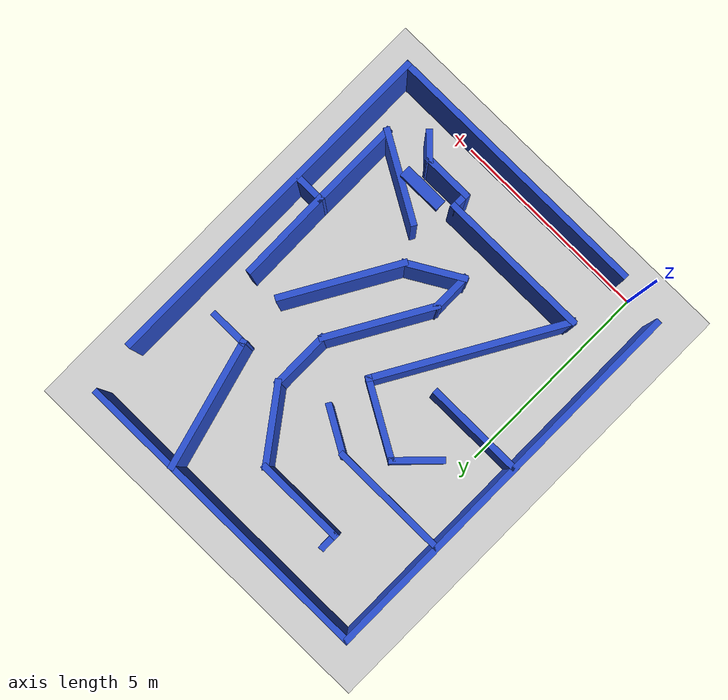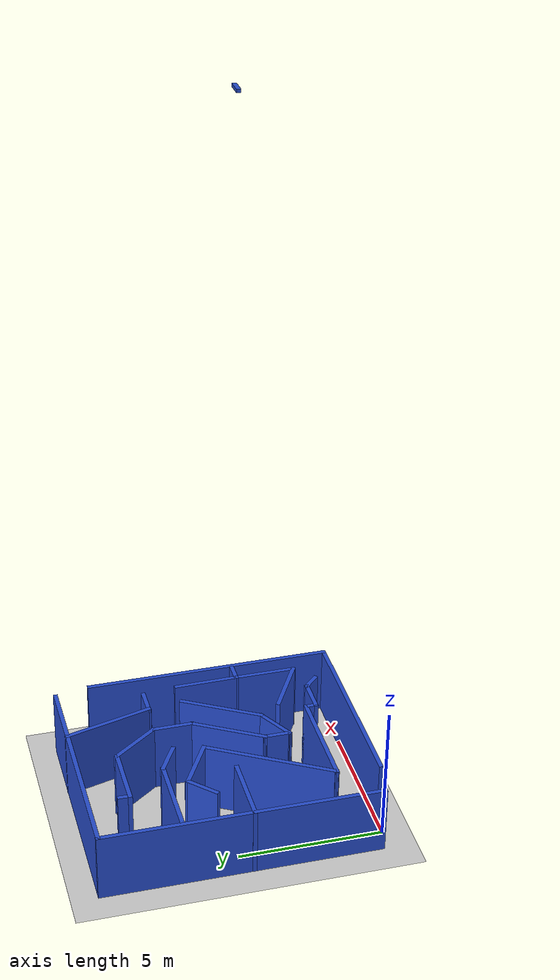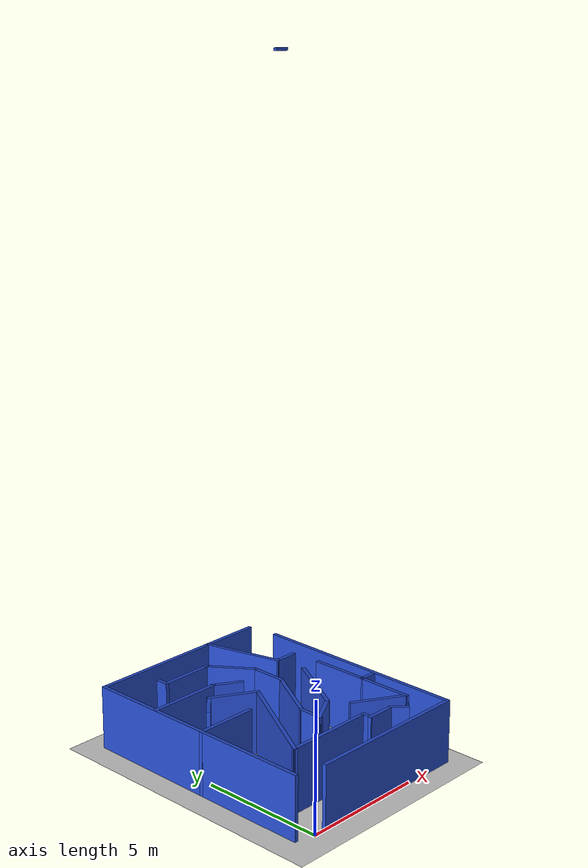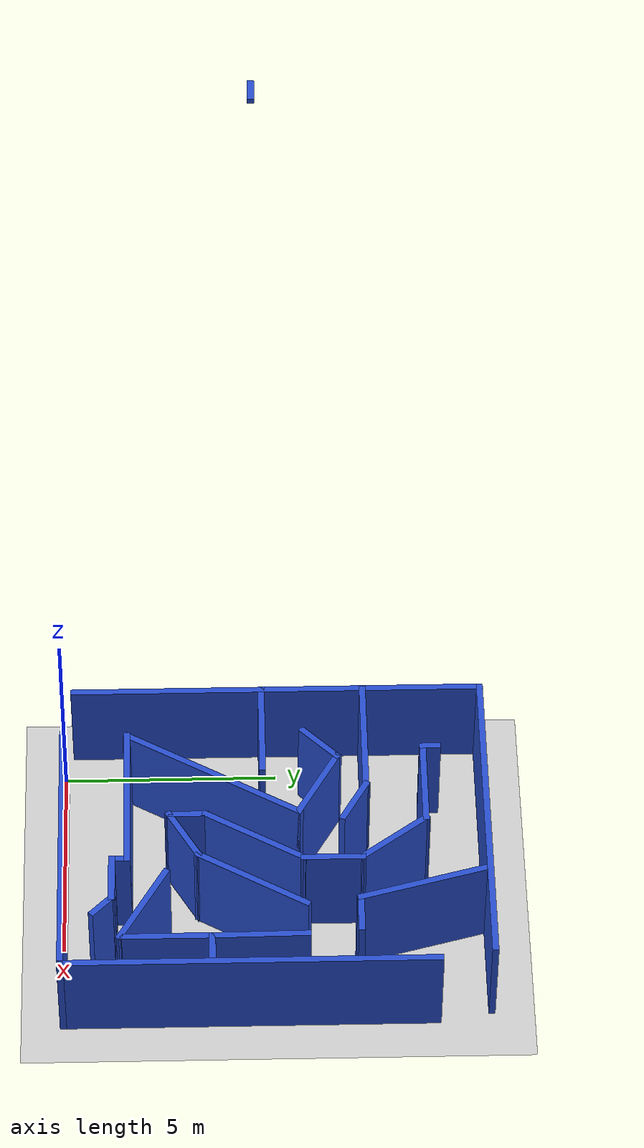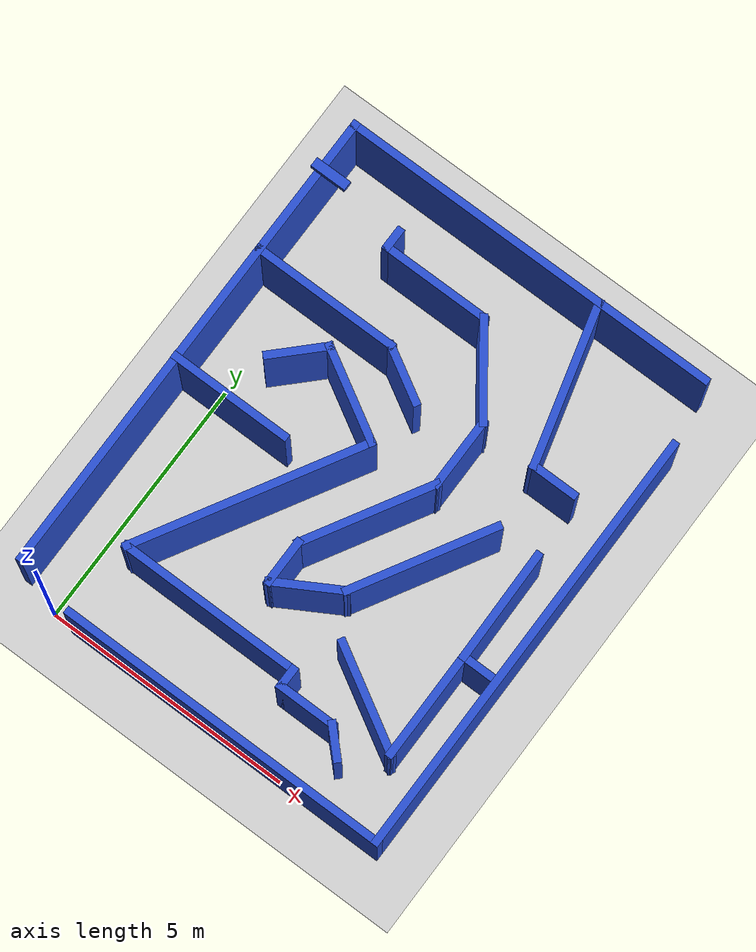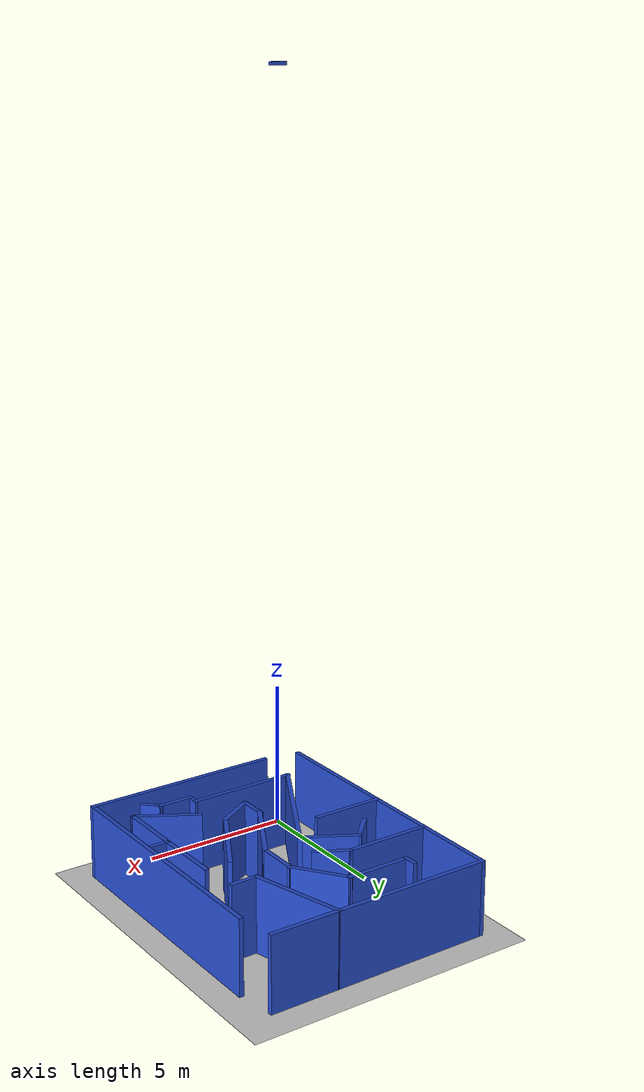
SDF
<sdf version="1.7">
 <world name="default">
  <light name="sun" type="directional">
   <pose>0 0 10 0 -0 0</pose>
   <diffuse>0.8 0.8 0.8 1</diffuse>
   <specular>0.2 0.2 0.2 1</specular>
   <attenuation>
    <range>1000</range>
    <constant>0.9</constant>
    <linear>0.01</linear>
    <quadratic>0.001</quadratic>
   </attenuation>
   <direction>-0.5 0.1 -0.9</direction>
   <spot><inner_angle>0</inner_angle><outer_angle>0</outer_angle><falloff>0</falloff></spot>
  </light>
  <model name="ground_plane">
   <static>1</static>
   <link name="link">
    <collision name="collision">
     <geometry><plane><normal>0 0 1</normal><size>100 100</size></plane></geometry>
     <surface><friction><ode><mu>100</mu><mu2>50</mu2></ode></friction></surface>
    </collision>
    <visual name="visual">
     <cast_shadows>0</cast_shadows>
     <geometry><plane><normal>0 0 1</normal><size>100 100</size></plane></geometry>
     <material>
      <script><uri>file://media/materials/scripts/gazebo.material</uri><name>Gazebo/Grey</name></script>
     </material>
    </visual>
   </link>
  </model>
  <gravity>0 0 -9.8</gravity>
  <magnetic_field>6e-06 2.3e-05 -4.2e-05</magnetic_field>
  <atmosphere type="adiabatic"/>
  <physics type="ode">
   <max_step_size>0.001</max_step_size>
   <real_time_factor>1</real_time_factor>
   <real_time_update_rate>1000</real_time_update_rate>
  </physics>
  <scene><ambient>0.4 0.4 0.4 1</ambient><background>0.7 0.7 0.7 1</background><shadows>0</shadows></scene>
  <spherical_coordinates>
   <surface_model>EARTH_WGS84</surface_model>
   <latitude_deg>0</latitude_deg>
   <longitude_deg>0</longitude_deg>
   <elevation>0</elevation>
   <heading_deg>0</heading_deg>
  </spherical_coordinates>
  <model name="camera">
   <link name="link_0">
    <inertial>
     <mass>0.00707571</mass>
     <inertia>
      <ixx>1.66494e-05</ixx>
      <ixy>0</ixy>
      <ixz>0</ixz>
      <iyy>0.000165453</iyy>
      <iyz>0</iyz>
      <izz>0.000169817</izz>
     </inertia>
    </inertial>
    <visual name="visual">
     <geometry><box><size>0.519789 0.133487 0.102067</size></box></geometry>
     <material>
      <lighting>1</lighting>
      <script><uri>file://media/materials/scripts/gazebo.material</uri><name>Gazebo/Blue</name></script>
      <shader type="pixel"/>
     </material>
     <cast_shadows>0</cast_shadows>
    </visual>
    <collision name="collision">
     <geometry><box><size>0.519789 0.133487 0.102067</size></box></geometry>
     <surface>
      <friction>
       <ode><mu>1</mu><mu2>1</mu2><fdir1>0 0 0</fdir1><slip1>0</slip1><slip2>0</slip2></ode>
       <torsional>
        <coefficient>1</coefficient>
        <patch_radius>0</patch_radius>
        <surface_radius>0</surface_radius>
        <use_patch_radius>1</use_patch_radius>
        <ode><slip>0</slip></ode>
       </torsional>
      </friction>
      <bounce><restitution_coefficient>0</restitution_coefficient><threshold>1e+06</threshold></bounce>
      <contact>
       <collide_without_contact>0</collide_without_contact>
       <collide_without_contact_bitmask>1</collide_without_contact_bitmask>
       <collide_bitmask>1</collide_bitmask>
       <ode>
        <soft_cfm>0</soft_cfm>
        <soft_erp>0.2</soft_erp>
        <kp>1e+13</kp>
        <kd>1</kd>
        <max_vel>0.01</max_vel>
        <min_depth>0</min_depth>
       </ode>
       <bullet>
        <split_impulse>1</split_impulse>
        <split_impulse_penetration_threshold>-0.01</split_impulse_penetration_threshold>
        <soft_cfm>0</soft_cfm>
        <soft_erp>0.2</soft_erp>
        <kp>1e+13</kp>
        <kd>1</kd>
       </bullet>
      </contact>
     </surface>
    </collision>
    <sensor name="upper_camera" type="camera">
     <pose>0 0 0 0 1.57 0</pose>
     <always_on>1</always_on>
     <visualize>1</visualize>
     <update_rate>30</update_rate>
     <camera name="Maze_Upper_Camera">
      <horizontal_fov>1.0856</horizontal_fov>
      <image><width>1280</width><height>720</height><format>R8G8B8</format></image>
      <clip><near>0.03</near><far>100</far></clip>
      <noise><type>gaussian</type><mean>0</mean><stddev>0.007</stddev></noise>
     </camera>
     <plugin name="camera_driver" filename="libgazebo_ros_camera.so"/>
    </sensor>
   </link>
   <static>1</static>
   <pose>2.99941 4.46162 25.4161 0 -0 0</pose>
  </model>
  <model name="maze_2">
   <link name="Wall_12">
    <pose>3.92259 -0.630829 0 0 0 -1.5708</pose>
    <inertial>
     <mass>1</mass>
     <inertia><ixx>1</ixx><ixy>0</ixy><ixz>0</ixz><iyy>1</iyy><iyz>0</iyz><izz>1</izz></inertia>
    </inertial>
    <visual name="Wall_12_Visual">
     <pose>0 0 1.25 0 -0 0</pose>
     <geometry><box><size>8.75 0.15 2.5</size></box></geometry>
     <material>
      <script><uri>file://media/materials/scripts/gazebo.material</uri><name>Gazebo/Blue</name></script>
      <ambient>0.643 0 0 1</ambient>
      <shader type="pixel"><normal_map>__default__</normal_map></shader>
      <diffuse>0 0 1 1</diffuse>
      <specular>0.1 0.1 0.1 1</specular>
      <emissive>0 0 0 1</emissive>
     </material>
     <meta><layer>0</layer></meta>
    </visual>
    <collision name="Wall_12_Collision">
     <pose>0 0 1.25 0 -0 0</pose>
     <geometry><box><size>8.75 0.15 2.5</size></box></geometry>
     <surface>
      <friction>
       <ode><mu>1</mu><mu2>1</mu2><fdir1>0 0 0</fdir1><slip1>0</slip1><slip2>0</slip2></ode>
       <torsional>
        <coefficient>1</coefficient>
        <patch_radius>0</patch_radius>
        <surface_radius>0</surface_radius>
        <use_patch_radius>1</use_patch_radius>
        <ode><slip>0</slip></ode>
       </torsional>
      </friction>
      <bounce><restitution_coefficient>0</restitution_coefficient><threshold>1e+06</threshold></bounce>
      <contact>
       <collide_without_contact>0</collide_without_contact>
       <collide_without_contact_bitmask>1</collide_without_contact_bitmask>
       <collide_bitmask>1</collide_bitmask>
       <ode>
        <soft_cfm>0</soft_cfm>
        <soft_erp>0.2</soft_erp>
        <kp>1e+13</kp>
        <kd>1</kd>
        <max_vel>0.01</max_vel>
        <min_depth>0</min_depth>
       </ode>
       <bullet>
        <split_impulse>1</split_impulse>
        <split_impulse_penetration_threshold>-0.01</split_impulse_penetration_threshold>
        <soft_cfm>0</soft_cfm>
        <soft_erp>0.2</soft_erp>
        <kp>1e+13</kp>
        <kd>1</kd>
       </bullet>
      </contact>
     </surface>
    </collision>
   </link>
   <link name="Wall_13">
    <pose>0.622594 -4.93083 0 0 -0 3.14159</pose>
    <inertial>
     <mass>1</mass>
     <inertia><ixx>1</ixx><ixy>0</ixy><ixz>0</ixz><iyy>1</iyy><iyz>0</iyz><izz>1</izz></inertia>
    </inertial>
    <visual name="Wall_13_Visual">
     <pose>0 0 1.25 0 -0 0</pose>
     <geometry><box><size>6.75 0.15 2.5</size></box></geometry>
     <material>
      <script><uri>file://media/materials/scripts/gazebo.material</uri><name>Gazebo/Blue</name></script>
      <ambient>0.643 0 0 1</ambient>
      <shader type="pixel"><normal_map>__default__</normal_map></shader>
      <diffuse>0 0 1 1</diffuse>
      <specular>0.1 0.1 0.1 1</specular>
      <emissive>0 0 0 1</emissive>
     </material>
     <meta><layer>0</layer></meta>
    </visual>
    <collision name="Wall_13_Collision">
     <pose>0 0 1.25 0 -0 0</pose>
     <geometry><box><size>6.75 0.15 2.5</size></box></geometry>
     <surface>
      <friction>
       <ode><mu>1</mu><mu2>1</mu2><fdir1>0 0 0</fdir1><slip1>0</slip1><slip2>0</slip2></ode>
       <torsional>
        <coefficient>1</coefficient>
        <patch_radius>0</patch_radius>
        <surface_radius>0</surface_radius>
        <use_patch_radius>1</use_patch_radius>
        <ode><slip>0</slip></ode>
       </torsional>
      </friction>
      <bounce><restitution_coefficient>0</restitution_coefficient><threshold>1e+06</threshold></bounce>
      <contact>
       <collide_without_contact>0</collide_without_contact>
       <collide_without_contact_bitmask>1</collide_without_contact_bitmask>
       <collide_bitmask>1</collide_bitmask>
       <ode>
        <soft_cfm>0</soft_cfm>
        <soft_erp>0.2</soft_erp>
        <kp>1e+13</kp>
        <kd>1</kd>
        <max_vel>0.01</max_vel>
        <min_depth>0</min_depth>
       </ode>
       <bullet>
        <split_impulse>1</split_impulse>
        <split_impulse_penetration_threshold>-0.01</split_impulse_penetration_threshold>
        <soft_cfm>0</soft_cfm>
        <soft_erp>0.2</soft_erp>
        <kp>1e+13</kp>
        <kd>1</kd>
       </bullet>
      </contact>
     </surface>
    </collision>
   </link>
   <link name="Wall_15">
    <pose>-1.44258 -1.42975 0 0 -0 1.0472</pose>
    <visual name="Wall_15_Visual">
     <pose>0 0 1.25 0 -0 0</pose>
     <geometry><box><size>4.75 0.15 2.5</size></box></geometry>
     <material>
      <script><uri>file://media/materials/scripts/gazebo.material</uri><name>Gazebo/Blue</name></script>
      <ambient>0 0 0 1</ambient>
      <shader type="pixel"/>
     </material>
     <meta><layer>0</layer></meta>
    </visual>
    <collision name="Wall_15_Collision">
     <pose>0 0 1.25 0 -0 0</pose>
     <geometry><box><size>4.75 0.15 2.5</size></box></geometry>
     <surface>
      <friction>
       <ode><mu>1</mu><mu2>1</mu2><fdir1>0 0 0</fdir1><slip1>0</slip1><slip2>0</slip2></ode>
       <torsional>
        <coefficient>1</coefficient>
        <patch_radius>0</patch_radius>
        <surface_radius>0</surface_radius>
        <use_patch_radius>1</use_patch_radius>
        <ode><slip>0</slip></ode>
       </torsional>
      </friction>
      <bounce><restitution_coefficient>0</restitution_coefficient><threshold>1e+06</threshold></bounce>
      <contact>
       <collide_without_contact>0</collide_without_contact>
       <collide_without_contact_bitmask>1</collide_without_contact_bitmask>
       <collide_bitmask>1</collide_bitmask>
       <ode>
        <soft_cfm>0</soft_cfm>
        <soft_erp>0.2</soft_erp>
        <kp>1e+13</kp>
        <kd>1</kd>
        <max_vel>0.01</max_vel>
        <min_depth>0</min_depth>
       </ode>
       <bullet>
        <split_impulse>1</split_impulse>
        <split_impulse_penetration_threshold>-0.01</split_impulse_penetration_threshold>
        <soft_cfm>0</soft_cfm>
        <soft_erp>0.2</soft_erp>
        <kp>1e+13</kp>
        <kd>1</kd>
       </bullet>
      </contact>
     </surface>
    </collision>
   </link>
   <link name="Wall_16">
    <pose>-1.09366 1.02461 0 0 -0 2.61799</pose>
    <visual name="Wall_16_Visual">
     <pose>0 0 1.25 0 -0 0</pose>
     <geometry><box><size>2 0.15 2.5</size></box></geometry>
     <material>
      <script><uri>file://media/materials/scripts/gazebo.material</uri><name>Gazebo/Blue</name></script>
      <ambient>0 0 0 1</ambient>
      <shader type="pixel"/>
     </material>
     <meta><layer>0</layer></meta>
    </visual>
    <collision name="Wall_16_Collision">
     <pose>0 0 1.25 0 -0 0</pose>
     <geometry><box><size>2 0.15 2.5</size></box></geometry>
     <surface>
      <friction>
       <ode><mu>1</mu><mu2>1</mu2><fdir1>0 0 0</fdir1><slip1>0</slip1><slip2>0</slip2></ode>
       <torsional>
        <coefficient>1</coefficient>
        <patch_radius>0</patch_radius>
        <surface_radius>0</surface_radius>
        <use_patch_radius>1</use_patch_radius>
        <ode><slip>0</slip></ode>
       </torsional>
      </friction>
      <bounce><restitution_coefficient>0</restitution_coefficient><threshold>1e+06</threshold></bounce>
      <contact>
       <collide_without_contact>0</collide_without_contact>
       <collide_without_contact_bitmask>1</collide_without_contact_bitmask>
       <collide_bitmask>1</collide_bitmask>
       <ode>
        <soft_cfm>0</soft_cfm>
        <soft_erp>0.2</soft_erp>
        <kp>1e+13</kp>
        <kd>1</kd>
        <max_vel>0.01</max_vel>
        <min_depth>0</min_depth>
       </ode>
       <bullet>
        <split_impulse>1</split_impulse>
        <split_impulse_penetration_threshold>-0.01</split_impulse_penetration_threshold>
        <soft_cfm>0</soft_cfm>
        <soft_erp>0.2</soft_erp>
        <kp>1e+13</kp>
        <kd>1</kd>
       </bullet>
      </contact>
     </surface>
    </collision>
   </link>
   <link name="Wall_20">
    <pose>-2.74759 -0.256182 0 0 -0 0</pose>
    <visual name="Wall_20_Visual">
     <pose>0 0 1.25 0 -0 0</pose>
     <geometry><box><size>2.5 0.15 2.5</size></box></geometry>
     <material>
      <script><uri>file://media/materials/scripts/gazebo.material</uri><name>Gazebo/Blue</name></script>
      <ambient>0 0 0 1</ambient>
      <shader type="pixel"/>
     </material>
     <meta><layer>0</layer></meta>
    </visual>
    <collision name="Wall_20_Collision">
     <pose>0 0 1.25 0 -0 0</pose>
     <geometry><box><size>2.5 0.15 2.5</size></box></geometry>
     <surface>
      <friction>
       <ode><mu>1</mu><mu2>1</mu2><fdir1>0 0 0</fdir1><slip1>0</slip1><slip2>0</slip2></ode>
       <torsional>
        <coefficient>1</coefficient>
        <patch_radius>0</patch_radius>
        <surface_radius>0</surface_radius>
        <use_patch_radius>1</use_patch_radius>
        <ode><slip>0</slip></ode>
       </torsional>
      </friction>
      <bounce><restitution_coefficient>0</restitution_coefficient><threshold>1e+06</threshold></bounce>
      <contact>
       <collide_without_contact>0</collide_without_contact>
       <collide_without_contact_bitmask>1</collide_without_contact_bitmask>
       <collide_bitmask>1</collide_bitmask>
       <ode>
        <soft_cfm>0</soft_cfm>
        <soft_erp>0.2</soft_erp>
        <kp>1e+13</kp>
        <kd>1</kd>
        <max_vel>0.01</max_vel>
        <min_depth>0</min_depth>
       </ode>
       <bullet>
        <split_impulse>1</split_impulse>
        <split_impulse_penetration_threshold>-0.01</split_impulse_penetration_threshold>
        <soft_cfm>0</soft_cfm>
        <soft_erp>0.2</soft_erp>
        <kp>1e+13</kp>
        <kd>1</kd>
       </bullet>
      </contact>
     </surface>
    </collision>
   </link>
   <link name="Wall_22">
    <pose>-2.28364 1.0982 0 0 0 -2.35619</pose>
    <visual name="Wall_22_Visual">
     <pose>0 0 1.25 0 -0 0</pose>
     <geometry><box><size>1.25 0.15 2.5</size></box></geometry>
     <material>
      <script><uri>file://media/materials/scripts/gazebo.material</uri><name>Gazebo/Blue</name></script>
      <ambient>0 0 0 1</ambient>
      <shader type="pixel"/>
     </material>
     <meta><layer>0</layer></meta>
    </visual>
    <collision name="Wall_22_Collision">
     <pose>0 0 1.25 0 -0 0</pose>
     <geometry><box><size>1.25 0.15 2.5</size></box></geometry>
     <surface>
      <friction>
       <ode><mu>1</mu><mu2>1</mu2><fdir1>0 0 0</fdir1><slip1>0</slip1><slip2>0</slip2></ode>
       <torsional>
        <coefficient>1</coefficient>
        <patch_radius>0</patch_radius>
        <surface_radius>0</surface_radius>
        <use_patch_radius>1</use_patch_radius>
        <ode><slip>0</slip></ode>
       </torsional>
      </friction>
      <bounce><restitution_coefficient>0</restitution_coefficient><threshold>1e+06</threshold></bounce>
      <contact>
       <collide_without_contact>0</collide_without_contact>
       <collide_without_contact_bitmask>1</collide_without_contact_bitmask>
       <collide_bitmask>1</collide_bitmask>
       <ode>
        <soft_cfm>0</soft_cfm>
        <soft_erp>0.2</soft_erp>
        <kp>1e+13</kp>
        <kd>1</kd>
        <max_vel>0.01</max_vel>
        <min_depth>0</min_depth>
       </ode>
       <bullet>
        <split_impulse>1</split_impulse>
        <split_impulse_penetration_threshold>-0.01</split_impulse_penetration_threshold>
        <soft_cfm>0</soft_cfm>
        <soft_erp>0.2</soft_erp>
        <kp>1e+13</kp>
        <kd>1</kd>
       </bullet>
      </contact>
     </surface>
    </collision>
   </link>
   <link name="Wall_24">
    <pose>-2.48295 2.1404 0 0 -0 0</pose>
    <visual name="Wall_24_Visual">
     <pose>0 0 1.25 0 -0 0</pose>
     <geometry><box><size>3 0.15 2.5</size></box></geometry>
     <material>
      <script><uri>file://media/materials/scripts/gazebo.material</uri><name>Gazebo/Blue</name></script>
      <ambient>0 0 0 1</ambient>
      <shader type="pixel"/>
     </material>
     <meta><layer>0</layer></meta>
    </visual>
    <collision name="Wall_24_Collision">
     <pose>0 0 1.25 0 -0 0</pose>
     <geometry><box><size>3 0.15 2.5</size></box></geometry>
     <surface>
      <friction>
       <ode><mu>1</mu><mu2>1</mu2><fdir1>0 0 0</fdir1><slip1>0</slip1><slip2>0</slip2></ode>
       <torsional>
        <coefficient>1</coefficient>
        <patch_radius>0</patch_radius>
        <surface_radius>0</surface_radius>
        <use_patch_radius>1</use_patch_radius>
        <ode><slip>0</slip></ode>
       </torsional>
      </friction>
      <bounce><restitution_coefficient>0</restitution_coefficient><threshold>1e+06</threshold></bounce>
      <contact>
       <collide_without_contact>0</collide_without_contact>
       <collide_without_contact_bitmask>1</collide_without_contact_bitmask>
       <collide_bitmask>1</collide_bitmask>
       <ode>
        <soft_cfm>0</soft_cfm>
        <soft_erp>0.2</soft_erp>
        <kp>1e+13</kp>
        <kd>1</kd>
        <max_vel>0.01</max_vel>
        <min_depth>0</min_depth>
       </ode>
       <bullet>
        <split_impulse>1</split_impulse>
        <split_impulse_penetration_threshold>-0.01</split_impulse_penetration_threshold>
        <soft_cfm>0</soft_cfm>
        <soft_erp>0.2</soft_erp>
        <kp>1e+13</kp>
        <kd>1</kd>
       </bullet>
      </contact>
     </surface>
    </collision>
   </link>
   <link name="Wall_25">
    <pose>-0.581633 1.8654 0 0 0 -0.523599</pose>
    <visual name="Wall_25_Visual">
     <pose>0 0 1.25 0 -0 0</pose>
     <geometry><box><size>1.25 0.15 2.5</size></box></geometry>
     <material>
      <script><uri>file://media/materials/scripts/gazebo.material</uri><name>Gazebo/Blue</name></script>
      <ambient>0 0 0 1</ambient>
      <shader type="pixel"/>
     </material>
     <meta><layer>0</layer></meta>
    </visual>
    <collision name="Wall_25_Collision">
     <pose>0 0 1.25 0 -0 0</pose>
     <geometry><box><size>1.25 0.15 2.5</size></box></geometry>
     <surface>
      <friction>
       <ode><mu>1</mu><mu2>1</mu2><fdir1>0 0 0</fdir1><slip1>0</slip1><slip2>0</slip2></ode>
       <torsional>
        <coefficient>1</coefficient>
        <patch_radius>0</patch_radius>
        <surface_radius>0</surface_radius>
        <use_patch_radius>1</use_patch_radius>
        <ode><slip>0</slip></ode>
       </torsional>
      </friction>
      <bounce><restitution_coefficient>0</restitution_coefficient><threshold>1e+06</threshold></bounce>
      <contact>
       <collide_without_contact>0</collide_without_contact>
       <collide_without_contact_bitmask>1</collide_without_contact_bitmask>
       <collide_bitmask>1</collide_bitmask>
       <ode>
        <soft_cfm>0</soft_cfm>
        <soft_erp>0.2</soft_erp>
        <kp>1e+13</kp>
        <kd>1</kd>
        <max_vel>0.01</max_vel>
        <min_depth>0</min_depth>
       </ode>
       <bullet>
        <split_impulse>1</split_impulse>
        <split_impulse_penetration_threshold>-0.01</split_impulse_penetration_threshold>
        <soft_cfm>0</soft_cfm>
        <soft_erp>0.2</soft_erp>
        <kp>1e+13</kp>
        <kd>1</kd>
       </bullet>
      </contact>
     </surface>
    </collision>
   </link>
   <link name="Wall_27">
    <pose>-0.792584 -3.42161 0 0 -0 0</pose>
    <visual name="Wall_27_Visual">
     <pose>0 0 1.25 0 -0 0</pose>
     <geometry><box><size>3.75 0.15 2.5</size></box></geometry>
     <material>
      <script><uri>file://media/materials/scripts/gazebo.material</uri><name>Gazebo/Blue</name></script>
      <ambient>0 0 0 1</ambient>
      <shader type="pixel"/>
     </material>
     <meta><layer>0</layer></meta>
    </visual>
    <collision name="Wall_27_Collision">
     <pose>0 0 1.25 0 -0 0</pose>
     <geometry><box><size>3.75 0.15 2.5</size></box></geometry>
     <surface>
      <friction>
       <ode><mu>1</mu><mu2>1</mu2><fdir1>0 0 0</fdir1><slip1>0</slip1><slip2>0</slip2></ode>
       <torsional>
        <coefficient>1</coefficient>
        <patch_radius>0</patch_radius>
        <surface_radius>0</surface_radius>
        <use_patch_radius>1</use_patch_radius>
        <ode><slip>0</slip></ode>
       </torsional>
      </friction>
      <bounce><restitution_coefficient>0</restitution_coefficient><threshold>1e+06</threshold></bounce>
      <contact>
       <collide_without_contact>0</collide_without_contact>
       <collide_without_contact_bitmask>1</collide_without_contact_bitmask>
       <collide_bitmask>1</collide_bitmask>
       <ode>
        <soft_cfm>0</soft_cfm>
        <soft_erp>0.2</soft_erp>
        <kp>1e+13</kp>
        <kd>1</kd>
        <max_vel>0.01</max_vel>
        <min_depth>0</min_depth>
       </ode>
       <bullet>
        <split_impulse>1</split_impulse>
        <split_impulse_penetration_threshold>-0.01</split_impulse_penetration_threshold>
        <soft_cfm>0</soft_cfm>
        <soft_erp>0.2</soft_erp>
        <kp>1e+13</kp>
        <kd>1</kd>
       </bullet>
      </contact>
     </surface>
    </collision>
   </link>
   <link name="Wall_29">
    <pose>1.00742 -3.59661 0 0 0 -1.5708</pose>
    <visual name="Wall_29_Visual">
     <pose>0 0 1.25 0 -0 0</pose>
     <geometry><box><size>0.5 0.15 2.5</size></box></geometry>
     <material>
      <script><uri>file://media/materials/scripts/gazebo.material</uri><name>Gazebo/Blue</name></script>
      <ambient>0 0 0 1</ambient>
      <shader type="pixel"/>
     </material>
     <meta><layer>0</layer></meta>
    </visual>
    <collision name="Wall_29_Collision">
     <pose>0 0 1.25 0 -0 0</pose>
     <geometry><box><size>0.5 0.15 2.5</size></box></geometry>
     <surface>
      <friction>
       <ode><mu>1</mu><mu2>1</mu2><fdir1>0 0 0</fdir1><slip1>0</slip1><slip2>0</slip2></ode>
       <torsional>
        <coefficient>1</coefficient>
        <patch_radius>0</patch_radius>
        <surface_radius>0</surface_radius>
        <use_patch_radius>1</use_patch_radius>
        <ode><slip>0</slip></ode>
       </torsional>
      </friction>
      <bounce><restitution_coefficient>0</restitution_coefficient><threshold>1e+06</threshold></bounce>
      <contact>
       <collide_without_contact>0</collide_without_contact>
       <collide_without_contact_bitmask>1</collide_without_contact_bitmask>
       <collide_bitmask>1</collide_bitmask>
       <ode>
        <soft_cfm>0</soft_cfm>
        <soft_erp>0.2</soft_erp>
        <kp>1e+13</kp>
        <kd>1</kd>
        <max_vel>0.01</max_vel>
        <min_depth>0</min_depth>
       </ode>
       <bullet>
        <split_impulse>1</split_impulse>
        <split_impulse_penetration_threshold>-0.01</split_impulse_penetration_threshold>
        <soft_cfm>0</soft_cfm>
        <soft_erp>0.2</soft_erp>
        <kp>1e+13</kp>
        <kd>1</kd>
       </bullet>
      </contact>
     </surface>
    </collision>
   </link>
   <link name="Wall_3">
    <pose>-3.91589 0.119305 0 0 -0 1.5708</pose>
    <inertial>
     <mass>1</mass>
     <inertia><ixx>1</ixx><ixy>0</ixy><ixz>0</ixz><iyy>1</iyy><iyz>0</iyz><izz>1</izz></inertia>
    </inertial>
    <visual name="Wall_3_Visual">
     <pose>0 0 1.25 0 -0 0</pose>
     <geometry><box><size>9.75 0.15 2.5</size></box></geometry>
     <material>
      <script><uri>file://media/materials/scripts/gazebo.material</uri><name>Gazebo/Blue</name></script>
      <ambient>0.643 0 0 1</ambient>
      <shader type="pixel"><normal_map>__default__</normal_map></shader>
      <diffuse>0 0 1 1</diffuse>
      <specular>0.1 0.1 0.1 1</specular>
      <emissive>0 0 0 1</emissive>
     </material>
     <meta><layer>0</layer></meta>
    </visual>
    <collision name="Wall_3_Collision">
     <pose>0 0 1.25 0 -0 0</pose>
     <geometry><box><size>9.75 0.15 2.5</size></box></geometry>
     <surface>
      <friction>
       <ode><mu>1</mu><mu2>1</mu2><fdir1>0 0 0</fdir1><slip1>0</slip1><slip2>0</slip2></ode>
       <torsional>
        <coefficient>1</coefficient>
        <patch_radius>0</patch_radius>
        <surface_radius>0</surface_radius>
        <use_patch_radius>1</use_patch_radius>
        <ode><slip>0</slip></ode>
       </torsional>
      </friction>
      <bounce><restitution_coefficient>0</restitution_coefficient><threshold>1e+06</threshold></bounce>
      <contact>
       <collide_without_contact>0</collide_without_contact>
       <collide_without_contact_bitmask>1</collide_without_contact_bitmask>
       <collide_bitmask>1</collide_bitmask>
       <ode>
        <soft_cfm>0</soft_cfm>
        <soft_erp>0.2</soft_erp>
        <kp>1e+13</kp>
        <kd>1</kd>
        <max_vel>0.01</max_vel>
        <min_depth>0</min_depth>
       </ode>
       <bullet>
        <split_impulse>1</split_impulse>
        <split_impulse_penetration_threshold>-0.01</split_impulse_penetration_threshold>
        <soft_cfm>0</soft_cfm>
        <soft_erp>0.2</soft_erp>
        <kp>1e+13</kp>
        <kd>1</kd>
       </bullet>
      </contact>
     </surface>
    </collision>
   </link>
   <link name="Wall_30">
    <pose>1.55741 -3.77161 0 0 -0 0</pose>
    <visual name="Wall_30_Visual">
     <pose>0 0 1.25 0 -0 0</pose>
     <geometry><box><size>1.25 0.15 2.5</size></box></geometry>
     <material>
      <script><uri>file://media/materials/scripts/gazebo.material</uri><name>Gazebo/Blue</name></script>
      <ambient>0 0 0 1</ambient>
      <shader type="pixel"/>
     </material>
     <meta><layer>0</layer></meta>
    </visual>
    <collision name="Wall_30_Collision">
     <pose>0 0 1.25 0 -0 0</pose>
     <geometry><box><size>1.25 0.15 2.5</size></box></geometry>
     <surface>
      <friction>
       <ode><mu>1</mu><mu2>1</mu2><fdir1>0 0 0</fdir1><slip1>0</slip1><slip2>0</slip2></ode>
       <torsional>
        <coefficient>1</coefficient>
        <patch_radius>0</patch_radius>
        <surface_radius>0</surface_radius>
        <use_patch_radius>1</use_patch_radius>
        <ode><slip>0</slip></ode>
       </torsional>
      </friction>
      <bounce><restitution_coefficient>0</restitution_coefficient><threshold>1e+06</threshold></bounce>
      <contact>
       <collide_without_contact>0</collide_without_contact>
       <collide_without_contact_bitmask>1</collide_without_contact_bitmask>
       <collide_bitmask>1</collide_bitmask>
       <ode>
        <soft_cfm>0</soft_cfm>
        <soft_erp>0.2</soft_erp>
        <kp>1e+13</kp>
        <kd>1</kd>
        <max_vel>0.01</max_vel>
        <min_depth>0</min_depth>
       </ode>
       <bullet>
        <split_impulse>1</split_impulse>
        <split_impulse_penetration_threshold>-0.01</split_impulse_penetration_threshold>
        <soft_cfm>0</soft_cfm>
        <soft_erp>0.2</soft_erp>
        <kp>1e+13</kp>
        <kd>1</kd>
       </bullet>
      </contact>
     </surface>
    </collision>
   </link>
   <link name="Wall_31">
    <pose>2.31955 -3.98374 0 0 0 -0.785398</pose>
    <visual name="Wall_31_Visual">
     <pose>0 0 1.25 0 -0 0</pose>
     <geometry><box><size>0.75 0.15 2.5</size></box></geometry>
     <material>
      <script><uri>file://media/materials/scripts/gazebo.material</uri><name>Gazebo/Blue</name></script>
      <ambient>0 0 0 1</ambient>
      <shader type="pixel"/>
     </material>
     <meta><layer>0</layer></meta>
    </visual>
    <collision name="Wall_31_Collision">
     <pose>0 0 1.25 0 -0 0</pose>
     <geometry><box><size>0.75 0.15 2.5</size></box></geometry>
     <surface>
      <friction>
       <ode><mu>1</mu><mu2>1</mu2><fdir1>0 0 0</fdir1><slip1>0</slip1><slip2>0</slip2></ode>
       <torsional>
        <coefficient>1</coefficient>
        <patch_radius>0</patch_radius>
        <surface_radius>0</surface_radius>
        <use_patch_radius>1</use_patch_radius>
        <ode><slip>0</slip></ode>
       </torsional>
      </friction>
      <bounce><restitution_coefficient>0</restitution_coefficient><threshold>1e+06</threshold></bounce>
      <contact>
       <collide_without_contact>0</collide_without_contact>
       <collide_without_contact_bitmask>1</collide_without_contact_bitmask>
       <collide_bitmask>1</collide_bitmask>
       <ode>
        <soft_cfm>0</soft_cfm>
        <soft_erp>0.2</soft_erp>
        <kp>1e+13</kp>
        <kd>1</kd>
        <max_vel>0.01</max_vel>
        <min_depth>0</min_depth>
       </ode>
       <bullet>
        <split_impulse>1</split_impulse>
        <split_impulse_penetration_threshold>-0.01</split_impulse_penetration_threshold>
        <soft_cfm>0</soft_cfm>
        <soft_erp>0.2</soft_erp>
        <kp>1e+13</kp>
        <kd>1</kd>
       </bullet>
      </contact>
     </surface>
    </collision>
   </link>
   <link name="Wall_34">
    <pose>2.30704 -3.05659 0 0 0 -0.523599</pose>
    <visual name="Wall_34_Visual">
     <pose>0 0 1.25 0 -0 0</pose>
     <geometry><box><size>2.25 0.15 2.5</size></box></geometry>
     <material>
      <script><uri>file://media/materials/scripts/gazebo.material</uri><name>Gazebo/Blue</name></script>
      <ambient>0 0 0 1</ambient>
      <shader type="pixel"/>
     </material>
     <meta><layer>0</layer></meta>
    </visual>
    <collision name="Wall_34_Collision">
     <pose>0 0 1.25 0 -0 0</pose>
     <geometry><box><size>2.25 0.15 2.5</size></box></geometry>
     <surface>
      <friction>
       <ode><mu>1</mu><mu2>1</mu2><fdir1>0 0 0</fdir1><slip1>0</slip1><slip2>0</slip2></ode>
       <torsional>
        <coefficient>1</coefficient>
        <patch_radius>0</patch_radius>
        <surface_radius>0</surface_radius>
        <use_patch_radius>1</use_patch_radius>
        <ode><slip>0</slip></ode>
       </torsional>
      </friction>
      <bounce><restitution_coefficient>0</restitution_coefficient><threshold>1e+06</threshold></bounce>
      <contact>
       <collide_without_contact>0</collide_without_contact>
       <collide_without_contact_bitmask>1</collide_without_contact_bitmask>
       <collide_bitmask>1</collide_bitmask>
       <ode>
        <soft_cfm>0</soft_cfm>
        <soft_erp>0.2</soft_erp>
        <kp>1e+13</kp>
        <kd>1</kd>
        <max_vel>0.01</max_vel>
        <min_depth>0</min_depth>
       </ode>
       <bullet>
        <split_impulse>1</split_impulse>
        <split_impulse_penetration_threshold>-0.01</split_impulse_penetration_threshold>
        <soft_cfm>0</soft_cfm>
        <soft_erp>0.2</soft_erp>
        <kp>1e+13</kp>
        <kd>1</kd>
       </bullet>
      </contact>
     </surface>
    </collision>
   </link>
   <link name="Wall_35">
    <pose>3.21637 -2.53159 0 0 -0 1.5708</pose>
    <visual name="Wall_35_Visual">
     <pose>0 0 1.25 0 -0 0</pose>
     <geometry><box><size>2.25 0.15 2.5</size></box></geometry>
     <material>
      <script><uri>file://media/materials/scripts/gazebo.material</uri><name>Gazebo/Blue</name></script>
      <ambient>0 0 0 1</ambient>
      <shader type="pixel"/>
     </material>
     <meta><layer>0</layer></meta>
    </visual>
    <collision name="Wall_35_Collision">
     <pose>0 0 1.25 0 -0 0</pose>
     <geometry><box><size>2.25 0.15 2.5</size></box></geometry>
     <surface>
      <friction>
       <ode><mu>1</mu><mu2>1</mu2><fdir1>0 0 0</fdir1><slip1>0</slip1><slip2>0</slip2></ode>
       <torsional>
        <coefficient>1</coefficient>
        <patch_radius>0</patch_radius>
        <surface_radius>0</surface_radius>
        <use_patch_radius>1</use_patch_radius>
        <ode><slip>0</slip></ode>
       </torsional>
      </friction>
      <bounce><restitution_coefficient>0</restitution_coefficient><threshold>1e+06</threshold></bounce>
      <contact>
       <collide_without_contact>0</collide_without_contact>
       <collide_without_contact_bitmask>1</collide_without_contact_bitmask>
       <collide_bitmask>1</collide_bitmask>
       <ode>
        <soft_cfm>0</soft_cfm>
        <soft_erp>0.2</soft_erp>
        <kp>1e+13</kp>
        <kd>1</kd>
        <max_vel>0.01</max_vel>
        <min_depth>0</min_depth>
       </ode>
       <bullet>
        <split_impulse>1</split_impulse>
        <split_impulse_penetration_threshold>-0.01</split_impulse_penetration_threshold>
        <soft_cfm>0</soft_cfm>
        <soft_erp>0.2</soft_erp>
        <kp>1e+13</kp>
        <kd>1</kd>
       </bullet>
      </contact>
     </surface>
    </collision>
   </link>
   <link name="Wall_36">
    <pose>3.51636 -1.48159 0 0 -0 0</pose>
    <visual name="Wall_36_Visual">
     <pose>0 0 1.25 0 -0 0</pose>
     <geometry><box><size>0.75 0.15 2.5</size></box></geometry>
     <material>
      <script><uri>file://media/materials/scripts/gazebo.material</uri><name>Gazebo/Blue</name></script>
      <ambient>0 0 0 1</ambient>
      <shader type="pixel"/>
     </material>
     <meta><layer>0</layer></meta>
    </visual>
    <collision name="Wall_36_Collision">
     <pose>0 0 1.25 0 -0 0</pose>
     <geometry><box><size>0.75 0.15 2.5</size></box></geometry>
     <surface>
      <friction>
       <ode><mu>1</mu><mu2>1</mu2><fdir1>0 0 0</fdir1><slip1>0</slip1><slip2>0</slip2></ode>
       <torsional>
        <coefficient>1</coefficient>
        <patch_radius>0</patch_radius>
        <surface_radius>0</surface_radius>
        <use_patch_radius>1</use_patch_radius>
        <ode><slip>0</slip></ode>
       </torsional>
      </friction>
      <bounce><restitution_coefficient>0</restitution_coefficient><threshold>1e+06</threshold></bounce>
      <contact>
       <collide_without_contact>0</collide_without_contact>
       <collide_without_contact_bitmask>1</collide_without_contact_bitmask>
       <collide_bitmask>1</collide_bitmask>
       <ode>
        <soft_cfm>0</soft_cfm>
        <soft_erp>0.2</soft_erp>
        <kp>1e+13</kp>
        <kd>1</kd>
        <max_vel>0.01</max_vel>
        <min_depth>0</min_depth>
       </ode>
       <bullet>
        <split_impulse>1</split_impulse>
        <split_impulse_penetration_threshold>-0.01</split_impulse_penetration_threshold>
        <soft_cfm>0</soft_cfm>
        <soft_erp>0.2</soft_erp>
        <kp>1e+13</kp>
        <kd>1</kd>
       </bullet>
      </contact>
     </surface>
    </collision>
   </link>
   <link name="Wall_39">
    <pose>0.331293 -2.11272 0 0 0 -2.61799</pose>
    <visual name="Wall_39_Visual">
     <pose>0 0 1.25 0 -0 0</pose>
     <geometry><box><size>1.5 0.15 2.5</size></box></geometry>
     <material>
      <script><uri>file://media/materials/scripts/gazebo.material</uri><name>Gazebo/Blue</name></script>
      <ambient>0 0 0 1</ambient>
      <shader type="pixel"/>
     </material>
     <meta><layer>0</layer></meta>
    </visual>
    <collision name="Wall_39_Collision">
     <pose>0 0 1.25 0 -0 0</pose>
     <geometry><box><size>1.5 0.15 2.5</size></box></geometry>
     <surface>
      <friction>
       <ode><mu>1</mu><mu2>1</mu2><fdir1>0 0 0</fdir1><slip1>0</slip1><slip2>0</slip2></ode>
       <torsional>
        <coefficient>1</coefficient>
        <patch_radius>0</patch_radius>
        <surface_radius>0</surface_radius>
        <use_patch_radius>1</use_patch_radius>
        <ode><slip>0</slip></ode>
       </torsional>
      </friction>
      <bounce><restitution_coefficient>0</restitution_coefficient><threshold>1e+06</threshold></bounce>
      <contact>
       <collide_without_contact>0</collide_without_contact>
       <collide_without_contact_bitmask>1</collide_without_contact_bitmask>
       <collide_bitmask>1</collide_bitmask>
       <ode>
        <soft_cfm>0</soft_cfm>
        <soft_erp>0.2</soft_erp>
        <kp>1e+13</kp>
        <kd>1</kd>
        <max_vel>0.01</max_vel>
        <min_depth>0</min_depth>
       </ode>
       <bullet>
        <split_impulse>1</split_impulse>
        <split_impulse_penetration_threshold>-0.01</split_impulse_penetration_threshold>
        <soft_cfm>0</soft_cfm>
        <soft_erp>0.2</soft_erp>
        <kp>1e+13</kp>
        <kd>1</kd>
       </bullet>
      </contact>
     </surface>
    </collision>
   </link>
   <link name="Wall_41">
    <pose>-0.253274 -2.02522 0 0 -0 1.5708</pose>
    <visual name="Wall_41_Visual">
     <pose>0 0 1.25 0 -0 0</pose>
     <geometry><box><size>1 0.15 2.5</size></box></geometry>
     <material>
      <script><uri>file://media/materials/scripts/gazebo.material</uri><name>Gazebo/Blue</name></script>
      <ambient>0 0 0 1</ambient>
      <shader type="pixel"/>
     </material>
     <meta><layer>0</layer></meta>
    </visual>
    <collision name="Wall_41_Collision">
     <pose>0 0 1.25 0 -0 0</pose>
     <geometry><box><size>1 0.15 2.5</size></box></geometry>
     <surface>
      <friction>
       <ode><mu>1</mu><mu2>1</mu2><fdir1>0 0 0</fdir1><slip1>0</slip1><slip2>0</slip2></ode>
       <torsional>
        <coefficient>1</coefficient>
        <patch_radius>0</patch_radius>
        <surface_radius>0</surface_radius>
        <use_patch_radius>1</use_patch_radius>
        <ode><slip>0</slip></ode>
       </torsional>
      </friction>
      <bounce><restitution_coefficient>0</restitution_coefficient><threshold>1e+06</threshold></bounce>
      <contact>
       <collide_without_contact>0</collide_without_contact>
       <collide_without_contact_bitmask>1</collide_without_contact_bitmask>
       <collide_bitmask>1</collide_bitmask>
       <ode>
        <soft_cfm>0</soft_cfm>
        <soft_erp>0.2</soft_erp>
        <kp>1e+13</kp>
        <kd>1</kd>
        <max_vel>0.01</max_vel>
        <min_depth>0</min_depth>
       </ode>
       <bullet>
        <split_impulse>1</split_impulse>
        <split_impulse_penetration_threshold>-0.01</split_impulse_penetration_threshold>
        <soft_cfm>0</soft_cfm>
        <soft_erp>0.2</soft_erp>
        <kp>1e+13</kp>
        <kd>1</kd>
       </bullet>
      </contact>
     </surface>
    </collision>
   </link>
   <link name="Wall_42">
    <pose>0.396726 -0.474385 0 0 -0 1.0472</pose>
    <visual name="Wall_42_Visual">
     <pose>0 0 1.25 0 -0 0</pose>
     <geometry><box><size>2.75 0.15 2.5</size></box></geometry>
     <material>
      <script><uri>file://media/materials/scripts/gazebo.material</uri><name>Gazebo/Blue</name></script>
      <ambient>0 0 0 1</ambient>
      <shader type="pixel"/>
     </material>
     <meta><layer>0</layer></meta>
    </visual>
    <collision name="Wall_42_Collision">
     <pose>0 0 1.25 0 -0 0</pose>
     <geometry><box><size>2.75 0.15 2.5</size></box></geometry>
     <surface>
      <friction>
       <ode><mu>1</mu><mu2>1</mu2><fdir1>0 0 0</fdir1><slip1>0</slip1><slip2>0</slip2></ode>
       <torsional>
        <coefficient>1</coefficient>
        <patch_radius>0</patch_radius>
        <surface_radius>0</surface_radius>
        <use_patch_radius>1</use_patch_radius>
        <ode><slip>0</slip></ode>
       </torsional>
      </friction>
      <bounce><restitution_coefficient>0</restitution_coefficient><threshold>1e+06</threshold></bounce>
      <contact>
       <collide_without_contact>0</collide_without_contact>
       <collide_without_contact_bitmask>1</collide_without_contact_bitmask>
       <collide_bitmask>1</collide_bitmask>
       <ode>
        <soft_cfm>0</soft_cfm>
        <soft_erp>0.2</soft_erp>
        <kp>1e+13</kp>
        <kd>1</kd>
        <max_vel>0.01</max_vel>
        <min_depth>0</min_depth>
       </ode>
       <bullet>
        <split_impulse>1</split_impulse>
        <split_impulse_penetration_threshold>-0.01</split_impulse_penetration_threshold>
        <soft_cfm>0</soft_cfm>
        <soft_erp>0.2</soft_erp>
        <kp>1e+13</kp>
        <kd>1</kd>
       </bullet>
      </contact>
     </surface>
    </collision>
   </link>
   <link name="Wall_44">
    <pose>1.62836 -0.541132 0 0 -0 1.0472</pose>
    <visual name="Wall_44_Visual">
     <pose>0 0 1.25 0 -0 0</pose>
     <geometry><box><size>3 0.15 2.5</size></box></geometry>
     <material>
      <script><uri>file://media/materials/scripts/gazebo.material</uri><name>Gazebo/Blue</name></script>
      <ambient>0 0 0 1</ambient>
      <shader type="pixel"/>
     </material>
     <meta><layer>0</layer></meta>
    </visual>
    <collision name="Wall_44_Collision">
     <pose>0 0 1.25 0 -0 0</pose>
     <geometry><box><size>3 0.15 2.5</size></box></geometry>
     <surface>
      <friction>
       <ode><mu>1</mu><mu2>1</mu2><fdir1>0 0 0</fdir1><slip1>0</slip1><slip2>0</slip2></ode>
       <torsional>
        <coefficient>1</coefficient>
        <patch_radius>0</patch_radius>
        <surface_radius>0</surface_radius>
        <use_patch_radius>1</use_patch_radius>
        <ode><slip>0</slip></ode>
       </torsional>
      </friction>
      <bounce><restitution_coefficient>0</restitution_coefficient><threshold>1e+06</threshold></bounce>
      <contact>
       <collide_without_contact>0</collide_without_contact>
       <collide_without_contact_bitmask>1</collide_without_contact_bitmask>
       <collide_bitmask>1</collide_bitmask>
       <ode>
        <soft_cfm>0</soft_cfm>
        <soft_erp>0.2</soft_erp>
        <kp>1e+13</kp>
        <kd>1</kd>
        <max_vel>0.01</max_vel>
        <min_depth>0</min_depth>
       </ode>
       <bullet>
        <split_impulse>1</split_impulse>
        <split_impulse_penetration_threshold>-0.01</split_impulse_penetration_threshold>
        <soft_cfm>0</soft_cfm>
        <soft_erp>0.2</soft_erp>
        <kp>1e+13</kp>
        <kd>1</kd>
       </bullet>
      </contact>
     </surface>
    </collision>
   </link>
   <link name="Wall_46">
    <pose>3.20361 -0.394318 0 0 0 -1.55907</pose>
    <visual name="Wall_46_Visual">
     <pose>0 0 1.25 0 -0 0</pose>
     <geometry><box><size>2.32469 0.15 2.5</size></box></geometry>
     <material>
      <script><uri>file://media/materials/scripts/gazebo.material</uri><name>Gazebo/Blue</name></script>
      <ambient>0 0 0 1</ambient>
      <shader type="pixel"/>
     </material>
     <meta><layer>0</layer></meta>
    </visual>
    <collision name="Wall_46_Collision">
     <pose>0 0 1.25 0 -0 0</pose>
     <geometry><box><size>2.32469 0.15 2.5</size></box></geometry>
     <surface>
      <friction>
       <ode><mu>1</mu><mu2>1</mu2><fdir1>0 0 0</fdir1><slip1>0</slip1><slip2>0</slip2></ode>
       <torsional>
        <coefficient>1</coefficient>
        <patch_radius>0</patch_radius>
        <surface_radius>0</surface_radius>
        <use_patch_radius>1</use_patch_radius>
        <ode><slip>0</slip></ode>
       </torsional>
      </friction>
      <bounce><restitution_coefficient>0</restitution_coefficient><threshold>1e+06</threshold></bounce>
      <contact>
       <collide_without_contact>0</collide_without_contact>
       <collide_without_contact_bitmask>1</collide_without_contact_bitmask>
       <collide_bitmask>1</collide_bitmask>
       <ode>
        <soft_cfm>0</soft_cfm>
        <soft_erp>0.2</soft_erp>
        <kp>1e+13</kp>
        <kd>1</kd>
        <max_vel>0.01</max_vel>
        <min_depth>0</min_depth>
       </ode>
       <bullet>
        <split_impulse>1</split_impulse>
        <split_impulse_penetration_threshold>-0.01</split_impulse_penetration_threshold>
        <soft_cfm>0</soft_cfm>
        <soft_erp>0.2</soft_erp>
        <kp>1e+13</kp>
        <kd>1</kd>
       </bullet>
      </contact>
     </surface>
    </collision>
   </link>
   <link name="Wall_48">
    <pose>1.04673 1.32645 0 0 -0 1.5708</pose>
    <visual name="Wall_48_Visual">
     <pose>0 0 1.25 0 -0 0</pose>
     <geometry><box><size>1.5 0.15 2.5</size></box></geometry>
     <material>
      <script><uri>file://media/materials/scripts/gazebo.material</uri><name>Gazebo/Blue</name></script>
      <ambient>0 0 0 1</ambient>
      <shader type="pixel"/>
     </material>
     <meta><layer>0</layer></meta>
    </visual>
    <collision name="Wall_48_Collision">
     <pose>0 0 1.25 0 -0 0</pose>
     <geometry><box><size>1.5 0.15 2.5</size></box></geometry>
     <surface>
      <friction>
       <ode><mu>1</mu><mu2>1</mu2><fdir1>0 0 0</fdir1><slip1>0</slip1><slip2>0</slip2></ode>
       <torsional>
        <coefficient>1</coefficient>
        <patch_radius>0</patch_radius>
        <surface_radius>0</surface_radius>
        <use_patch_radius>1</use_patch_radius>
        <ode><slip>0</slip></ode>
       </torsional>
      </friction>
      <bounce><restitution_coefficient>0</restitution_coefficient><threshold>1e+06</threshold></bounce>
      <contact>
       <collide_without_contact>0</collide_without_contact>
       <collide_without_contact_bitmask>1</collide_without_contact_bitmask>
       <collide_bitmask>1</collide_bitmask>
       <ode>
        <soft_cfm>0</soft_cfm>
        <soft_erp>0.2</soft_erp>
        <kp>1e+13</kp>
        <kd>1</kd>
        <max_vel>0.01</max_vel>
        <min_depth>0</min_depth>
       </ode>
       <bullet>
        <split_impulse>1</split_impulse>
        <split_impulse_penetration_threshold>-0.01</split_impulse_penetration_threshold>
        <soft_cfm>0</soft_cfm>
        <soft_erp>0.2</soft_erp>
        <kp>1e+13</kp>
        <kd>1</kd>
       </bullet>
      </contact>
     </surface>
    </collision>
   </link>
   <link name="Wall_49">
    <pose>0.496726 2.75145 0 0 -0 2.20355</pose>
    <visual name="Wall_49_Visual">
     <pose>0 0 1.25 0 -0 0</pose>
     <geometry><box><size>2.01011 0.15 2.5</size></box></geometry>
     <material>
      <script><uri>file://media/materials/scripts/gazebo.material</uri><name>Gazebo/Blue</name></script>
      <ambient>0 0 0 1</ambient>
      <shader type="pixel"/>
     </material>
     <meta><layer>0</layer></meta>
    </visual>
    <collision name="Wall_49_Collision">
     <pose>0 0 1.25 0 -0 0</pose>
     <geometry><box><size>2.01011 0.15 2.5</size></box></geometry>
     <surface>
      <friction>
       <ode><mu>1</mu><mu2>1</mu2><fdir1>0 0 0</fdir1><slip1>0</slip1><slip2>0</slip2></ode>
       <torsional>
        <coefficient>1</coefficient>
        <patch_radius>0</patch_radius>
        <surface_radius>0</surface_radius>
        <use_patch_radius>1</use_patch_radius>
        <ode><slip>0</slip></ode>
       </torsional>
      </friction>
      <bounce><restitution_coefficient>0</restitution_coefficient><threshold>1e+06</threshold></bounce>
      <contact>
       <collide_without_contact>0</collide_without_contact>
       <collide_without_contact_bitmask>1</collide_without_contact_bitmask>
       <collide_bitmask>1</collide_bitmask>
       <ode>
        <soft_cfm>0</soft_cfm>
        <soft_erp>0.2</soft_erp>
        <kp>1e+13</kp>
        <kd>1</kd>
        <max_vel>0.01</max_vel>
        <min_depth>0</min_depth>
       </ode>
       <bullet>
        <split_impulse>1</split_impulse>
        <split_impulse_penetration_threshold>-0.01</split_impulse_penetration_threshold>
        <soft_cfm>0</soft_cfm>
        <soft_erp>0.2</soft_erp>
        <kp>1e+13</kp>
        <kd>1</kd>
       </bullet>
      </contact>
     </surface>
    </collision>
   </link>
   <link name="Wall_50">
    <pose>-1.10327 3.50145 0 0 -0 3.14159</pose>
    <visual name="Wall_50_Visual">
     <pose>0 0 1.25 0 -0 0</pose>
     <geometry><box><size>2.25 0.15 2.5</size></box></geometry>
     <material>
      <script><uri>file://media/materials/scripts/gazebo.material</uri><name>Gazebo/Blue</name></script>
      <ambient>0 0 0 1</ambient>
      <shader type="pixel"/>
     </material>
     <meta><layer>0</layer></meta>
    </visual>
    <collision name="Wall_50_Collision">
     <pose>0 0 1.25 0 -0 0</pose>
     <geometry><box><size>2.25 0.15 2.5</size></box></geometry>
     <surface>
      <friction>
       <ode><mu>1</mu><mu2>1</mu2><fdir1>0 0 0</fdir1><slip1>0</slip1><slip2>0</slip2></ode>
       <torsional>
        <coefficient>1</coefficient>
        <patch_radius>0</patch_radius>
        <surface_radius>0</surface_radius>
        <use_patch_radius>1</use_patch_radius>
        <ode><slip>0</slip></ode>
       </torsional>
      </friction>
      <bounce><restitution_coefficient>0</restitution_coefficient><threshold>1e+06</threshold></bounce>
      <contact>
       <collide_without_contact>0</collide_without_contact>
       <collide_without_contact_bitmask>1</collide_without_contact_bitmask>
       <collide_bitmask>1</collide_bitmask>
       <ode>
        <soft_cfm>0</soft_cfm>
        <soft_erp>0.2</soft_erp>
        <kp>1e+13</kp>
        <kd>1</kd>
        <max_vel>0.01</max_vel>
        <min_depth>0</min_depth>
       </ode>
       <bullet>
        <split_impulse>1</split_impulse>
        <split_impulse_penetration_threshold>-0.01</split_impulse_penetration_threshold>
        <soft_cfm>0</soft_cfm>
        <soft_erp>0.2</soft_erp>
        <kp>1e+13</kp>
        <kd>1</kd>
       </bullet>
      </contact>
     </surface>
    </collision>
   </link>
   <link name="Wall_51">
    <pose>-2.15327 3.67645 0 0 -0 1.5708</pose>
    <visual name="Wall_51_Visual">
     <pose>0 0 1.25 0 -0 0</pose>
     <geometry><box><size>0.5 0.15 2.5</size></box></geometry>
     <material>
      <script><uri>file://media/materials/scripts/gazebo.material</uri><name>Gazebo/Blue</name></script>
      <ambient>0 0 0 1</ambient>
      <shader type="pixel"/>
     </material>
     <meta><layer>0</layer></meta>
    </visual>
    <collision name="Wall_51_Collision">
     <pose>0 0 1.25 0 -0 0</pose>
     <geometry><box><size>0.5 0.15 2.5</size></box></geometry>
     <surface>
      <friction>
       <ode><mu>1</mu><mu2>1</mu2><fdir1>0 0 0</fdir1><slip1>0</slip1><slip2>0</slip2></ode>
       <torsional>
        <coefficient>1</coefficient>
        <patch_radius>0</patch_radius>
        <surface_radius>0</surface_radius>
        <use_patch_radius>1</use_patch_radius>
        <ode><slip>0</slip></ode>
       </torsional>
      </friction>
      <bounce><restitution_coefficient>0</restitution_coefficient><threshold>1e+06</threshold></bounce>
      <contact>
       <collide_without_contact>0</collide_without_contact>
       <collide_without_contact_bitmask>1</collide_without_contact_bitmask>
       <collide_bitmask>1</collide_bitmask>
       <ode>
        <soft_cfm>0</soft_cfm>
        <soft_erp>0.2</soft_erp>
        <kp>1e+13</kp>
        <kd>1</kd>
        <max_vel>0.01</max_vel>
        <min_depth>0</min_depth>
       </ode>
       <bullet>
        <split_impulse>1</split_impulse>
        <split_impulse_penetration_threshold>-0.01</split_impulse_penetration_threshold>
        <soft_cfm>0</soft_cfm>
        <soft_erp>0.2</soft_erp>
        <kp>1e+13</kp>
        <kd>1</kd>
       </bullet>
      </contact>
     </surface>
    </collision>
   </link>
   <link name="Wall_54">
    <pose>1.79815 3.41679 0 0 0 -1.309</pose>
    <visual name="Wall_54_Visual">
     <pose>0 0 1.25 0 -0 0</pose>
     <geometry><box><size>3.25 0.15 2.5</size></box></geometry>
     <material>
      <script><uri>file://media/materials/scripts/gazebo.material</uri><name>Gazebo/Blue</name></script>
      <ambient>0 0 0 1</ambient>
      <shader type="pixel"/>
     </material>
     <meta><layer>0</layer></meta>
    </visual>
    <collision name="Wall_54_Collision">
     <pose>0 0 1.25 0 -0 0</pose>
     <geometry><box><size>3.25 0.15 2.5</size></box></geometry>
     <surface>
      <friction>
       <ode><mu>1</mu><mu2>1</mu2><fdir1>0 0 0</fdir1><slip1>0</slip1><slip2>0</slip2></ode>
       <torsional>
        <coefficient>1</coefficient>
        <patch_radius>0</patch_radius>
        <surface_radius>0</surface_radius>
        <use_patch_radius>1</use_patch_radius>
        <ode><slip>0</slip></ode>
       </torsional>
      </friction>
      <bounce><restitution_coefficient>0</restitution_coefficient><threshold>1e+06</threshold></bounce>
      <contact>
       <collide_without_contact>0</collide_without_contact>
       <collide_without_contact_bitmask>1</collide_without_contact_bitmask>
       <collide_bitmask>1</collide_bitmask>
       <ode>
        <soft_cfm>0</soft_cfm>
        <soft_erp>0.2</soft_erp>
        <kp>1e+13</kp>
        <kd>1</kd>
        <max_vel>0.01</max_vel>
        <min_depth>0</min_depth>
       </ode>
       <bullet>
        <split_impulse>1</split_impulse>
        <split_impulse_penetration_threshold>-0.01</split_impulse_penetration_threshold>
        <soft_cfm>0</soft_cfm>
        <soft_erp>0.2</soft_erp>
        <kp>1e+13</kp>
        <kd>1</kd>
       </bullet>
      </contact>
     </surface>
    </collision>
   </link>
   <link name="Wall_55">
    <pose>2.62432 1.9196 0 0 -0 0</pose>
    <visual name="Wall_55_Visual">
     <pose>0 0 1.25 0 -0 0</pose>
     <geometry><box><size>1 0.15 2.5</size></box></geometry>
     <material>
      <script><uri>file://media/materials/scripts/gazebo.material</uri><name>Gazebo/Blue</name></script>
      <ambient>0 0 0 1</ambient>
      <shader type="pixel"/>
     </material>
     <meta><layer>0</layer></meta>
    </visual>
    <collision name="Wall_55_Collision">
     <pose>0 0 1.25 0 -0 0</pose>
     <geometry><box><size>1 0.15 2.5</size></box></geometry>
     <surface>
      <friction>
       <ode><mu>1</mu><mu2>1</mu2><fdir1>0 0 0</fdir1><slip1>0</slip1><slip2>0</slip2></ode>
       <torsional>
        <coefficient>1</coefficient>
        <patch_radius>0</patch_radius>
        <surface_radius>0</surface_radius>
        <use_patch_radius>1</use_patch_radius>
        <ode><slip>0</slip></ode>
       </torsional>
      </friction>
      <bounce><restitution_coefficient>0</restitution_coefficient><threshold>1e+06</threshold></bounce>
      <contact>
       <collide_without_contact>0</collide_without_contact>
       <collide_without_contact_bitmask>1</collide_without_contact_bitmask>
       <collide_bitmask>1</collide_bitmask>
       <ode>
        <soft_cfm>0</soft_cfm>
        <soft_erp>0.2</soft_erp>
        <kp>1e+13</kp>
        <kd>1</kd>
        <max_vel>0.01</max_vel>
        <min_depth>0</min_depth>
       </ode>
       <bullet>
        <split_impulse>1</split_impulse>
        <split_impulse_penetration_threshold>-0.01</split_impulse_penetration_threshold>
        <soft_cfm>0</soft_cfm>
        <soft_erp>0.2</soft_erp>
        <kp>1e+13</kp>
        <kd>1</kd>
       </bullet>
      </contact>
     </surface>
    </collision>
   </link>
   <link name="Wall_8">
    <pose>-0.115891 4.9193 0 0 -0 0</pose>
    <inertial>
     <mass>1</mass>
     <inertia><ixx>1</ixx><ixy>0</ixy><ixz>0</ixz><iyy>1</iyy><iyz>0</iyz><izz>1</izz></inertia>
    </inertial>
    <visual name="Wall_8_Visual">
     <pose>0 0 1.25 0 -0 0</pose>
     <geometry><box><size>7.75 0.15 2.5</size></box></geometry>
     <material>
      <script><uri>file://media/materials/scripts/gazebo.material</uri><name>Gazebo/Blue</name></script>
      <ambient>0.643 0 0 1</ambient>
      <shader type="pixel"><normal_map>__default__</normal_map></shader>
      <diffuse>0 0 1 1</diffuse>
      <specular>0.1 0.1 0.1 1</specular>
      <emissive>0 0 0 1</emissive>
     </material>
     <meta><layer>0</layer></meta>
    </visual>
    <collision name="Wall_8_Collision">
     <pose>0 0 1.25 0 -0 0</pose>
     <geometry><box><size>7.75 0.15 2.5</size></box></geometry>
     <surface>
      <friction>
       <ode><mu>1</mu><mu2>1</mu2><fdir1>0 0 0</fdir1><slip1>0</slip1><slip2>0</slip2></ode>
       <torsional>
        <coefficient>1</coefficient>
        <patch_radius>0</patch_radius>
        <surface_radius>0</surface_radius>
        <use_patch_radius>1</use_patch_radius>
        <ode><slip>0</slip></ode>
       </torsional>
      </friction>
      <bounce><restitution_coefficient>0</restitution_coefficient><threshold>1e+06</threshold></bounce>
      <contact>
       <collide_without_contact>0</collide_without_contact>
       <collide_without_contact_bitmask>1</collide_without_contact_bitmask>
       <collide_bitmask>1</collide_bitmask>
       <ode>
        <soft_cfm>0</soft_cfm>
        <soft_erp>0.2</soft_erp>
        <kp>1e+13</kp>
        <kd>1</kd>
        <max_vel>0.01</max_vel>
        <min_depth>0</min_depth>
       </ode>
       <bullet>
        <split_impulse>1</split_impulse>
        <split_impulse_penetration_threshold>-0.01</split_impulse_penetration_threshold>
        <soft_cfm>0</soft_cfm>
        <soft_erp>0.2</soft_erp>
        <kp>1e+13</kp>
        <kd>1</kd>
       </bullet>
      </contact>
     </surface>
    </collision>
   </link>
   <static>1</static>
   <pose>3.19542 4.92683 0 0 -0 0</pose>
  </model>
 </world>
</sdf>
